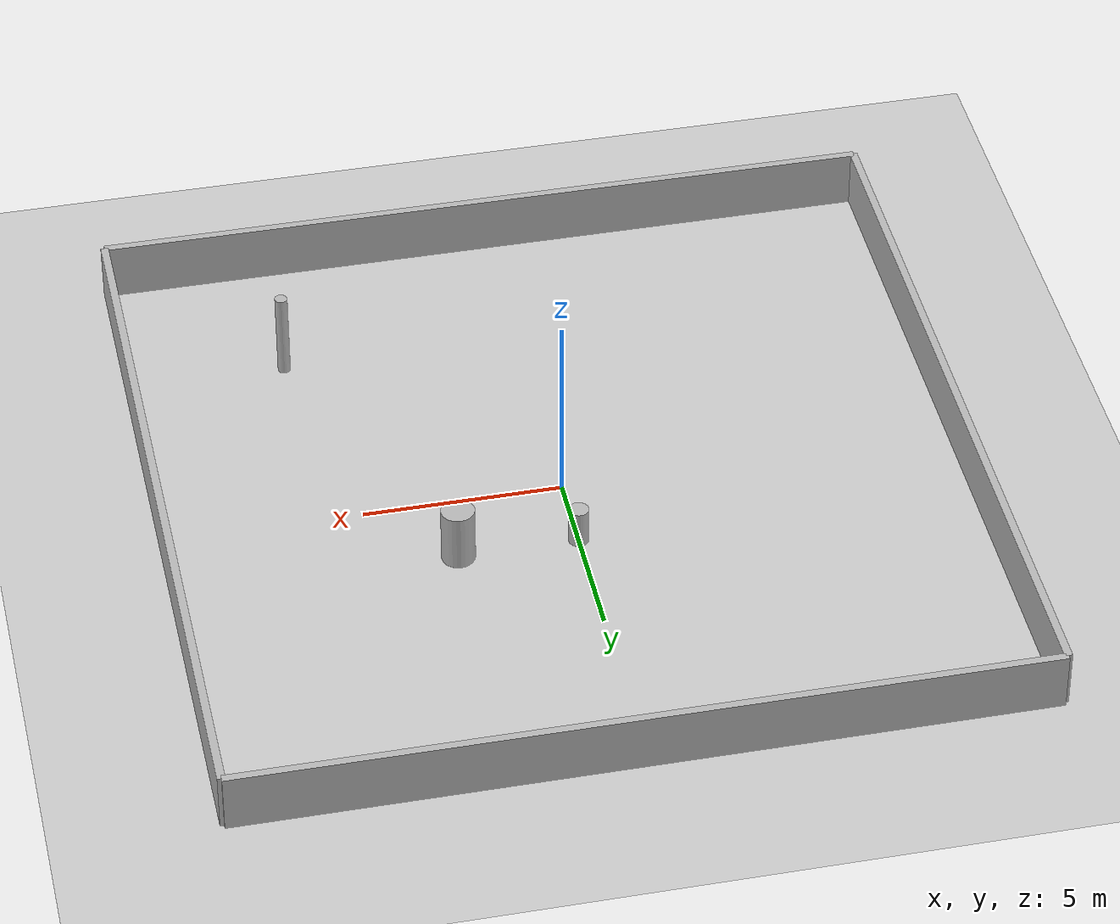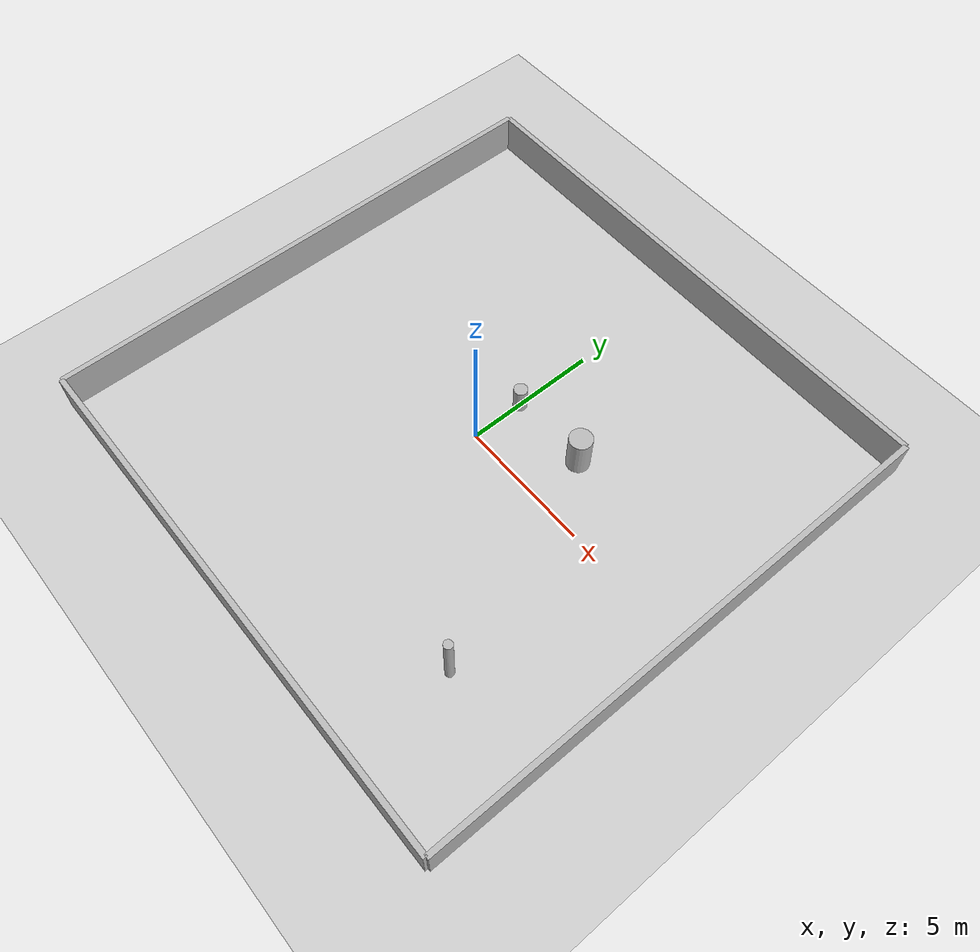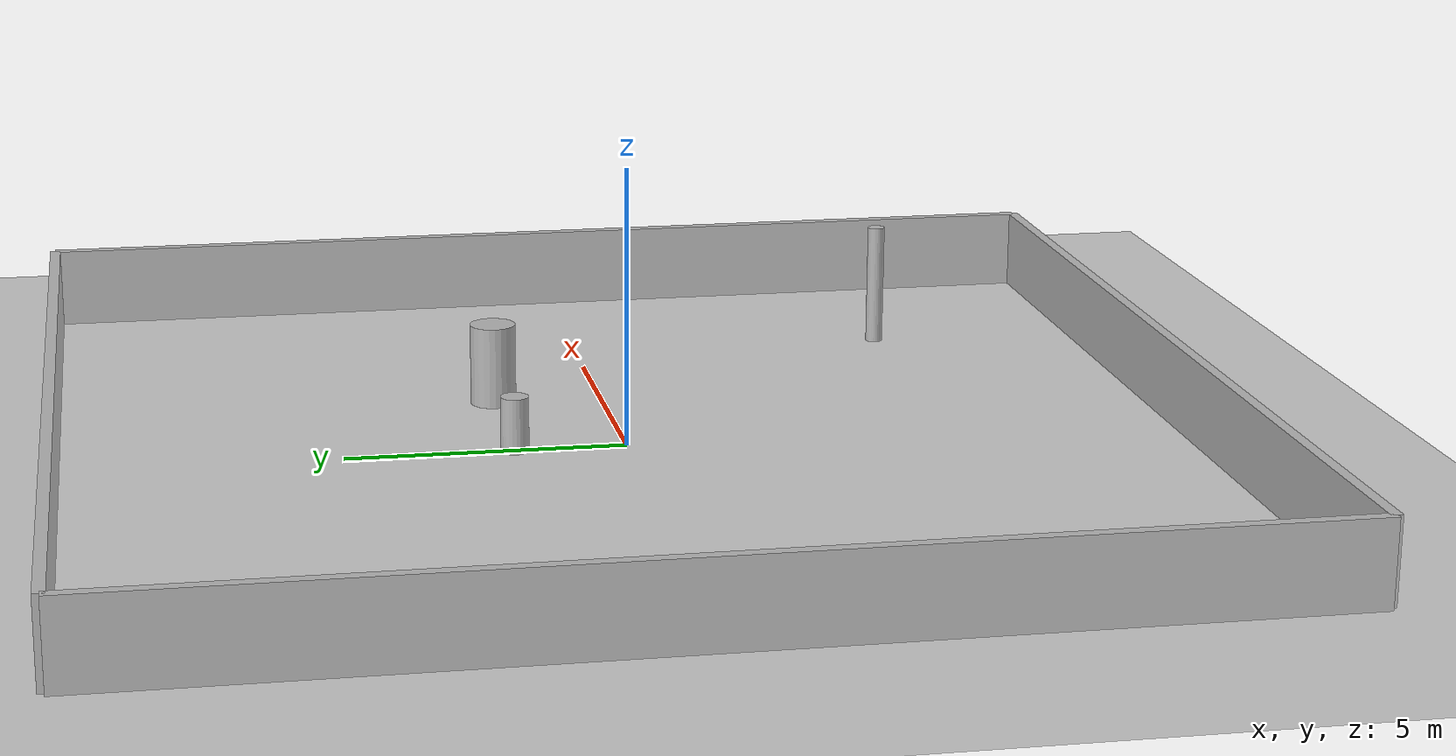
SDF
<sdf version="1.7">
  <world name='playground'>
    <light name='sun' type='directional'>
      <pose>0 0 10 0 0 0</pose>
      <cast_shadows>true</cast_shadows>
      <intensity>1</intensity>
      <direction>-0.5 0.10000000000000001 -0.90000000000000002</direction>
      <diffuse>0.800000012 0.800000012 0.800000012 1</diffuse>
      <specular>0.200000003 0.200000003 0.200000003 1</specular>
      <attenuation>
        <range>1000</range>
        <linear>0.01</linear>
        <constant>0.90000000000000002</constant>
        <quadratic>0.001</quadratic>
      </attenuation>
      <spot>
        <inner_angle>0</inner_angle>
        <outer_angle>0</outer_angle>
        <falloff>0</falloff>
      </spot>
    </light>
    <model name='ground_plane'>
      <static>true</static>
      <link name='link'>
        <collision name='collision'>
          <geometry>
            <plane>
              <normal>0 0 1</normal>
              <size>100 100</size>
            </plane>
          </geometry>
          <surface>
            <friction>
              <ode/>
            </friction>
            <bounce/>
            <contact/>
          </surface>
        </collision>
        <visual name='visual'>
          <geometry>
            <plane>
              <normal>0 0 1</normal>
              <size>100 100</size>
            </plane>
          </geometry>
          <material>
            <ambient>0.800000012 0.800000012 0.800000012 1</ambient>
            <diffuse>0.800000012 0.800000012 0.800000012 1</diffuse>
            <specular>0.800000012 0.800000012 0.800000012 1</specular>
          </material>
        </visual>
        <pose>0 0 0 0 0 0</pose>
        <inertial>
          <pose>0 0 0 0 0 0</pose>
          <mass>1</mass>
          <inertia>
            <ixx>1</ixx>
            <ixy>0</ixy>
            <ixz>0</ixz>
            <iyy>1</iyy>
            <iyz>0</iyz>
            <izz>1</izz>
          </inertia>
        </inertial>
        <enable_wind>false</enable_wind>
      </link>
      <pose>0 0 0 0 0 0</pose>
      <self_collide>false</self_collide>
    </model>
    <model name="retaining_wall1">
      <static>true</static>
      <pose>-10 0 0.75 0 0 0 </pose>
      <link name="example_wall1">
        <visual name="visual">
          <geometry>
            <box>
              <size>0.2 20 1.5</size>
            </box>
          </geometry>
        </visual>
        <collision name="collision">
          <geometry>
            <box>
              <size>0.2 20 1.5</size>
            </box>
          </geometry>
        </collision>
      </link>
    </model>
    <model name="retaining_wall2">
      <static>true</static>
      <pose>10 0 0.75 0 0 0 </pose>
      <link name="example_wall1">
        <visual name="visual">
          <geometry>
            <box>
              <size>0.2 20 1.5</size>
            </box>
          </geometry>
        </visual>
        <collision name="collision">
          <geometry>
            <box>
              <size>0.2 20 1.5</size>
            </box>
          </geometry>
        </collision>
      </link>
    </model>
    <model name="retaining_wall3">
      <static>true</static>
      <pose>0 10 0.75 0 0 1.57 </pose>
      <link name="example_wall1">
        <visual name="visual">
          <geometry>
            <box>
              <size>0.2 20 1.5</size>
            </box>
          </geometry>
        </visual>
        <collision name="collision">
          <geometry>
            <box>
              <size>0.2 20 1.5</size>
            </box>
          </geometry>
        </collision>
      </link>
    </model>
    <model name="retaining_wall4">
      <static>true</static>
      <pose>0 -10 0.75 0 0 1.57 </pose>
      <link name="example_wall1">
        <visual name="visual">
          <geometry>
            <box>
              <size>0.2 20 1.5</size>
            </box>
          </geometry>
        </visual>
        <collision name="collision">
          <geometry>
            <box>
              <size>0.2 20 1.5</size>
            </box>
          </geometry>
        </collision>
      </link>
    </model>
    <model name="cylinder1">
      <static>true</static>
      <pose>0 2 0.5 0 0 0 </pose>
      <link name="cyl">
        <visual name="visual">
          <geometry>
            <cylinder>
              <radius>0.25</radius>
              <length>1</length>
            </cylinder>
          </geometry>
        </visual>
        <collision name="collision">
          <geometry>
            <cylinder>
              <radius>0.25</radius>
              <length>1</length>
            </cylinder>
          </geometry>
        </collision>
      </link>
    </model>
    <model name="cylinder2">
      <static>true</static>
      <pose>6 -6 1.15 0 0 0 </pose>
      <link name="cyl">
        <visual name="visual">
          <geometry>
            <cylinder>
              <radius>0.16</radius>
              <length>2.3</length>
            </cylinder>
          </geometry>
        </visual>
        <collision name="collision">
          <geometry>
            <cylinder>
              <radius>0.25</radius>
              <length>1</length>
            </cylinder>
          </geometry>
        </collision>
      </link>
    </model>
    <model name="cylinder3">
      <static>true</static>
      <pose>3 2 0.75 0 0 0 </pose>
      <link name="cyl">
        <visual name="visual">
          <geometry>
            <cylinder>
              <radius>0.42</radius>
              <length>1.5</length>
            </cylinder>
          </geometry>
        </visual>
        <collision name="collision">
          <geometry>
            <cylinder>
              <radius>0.25</radius>
              <length>1</length>
            </cylinder>
          </geometry>
        </collision>
      </link>
    </model>
  </world>
</sdf>
